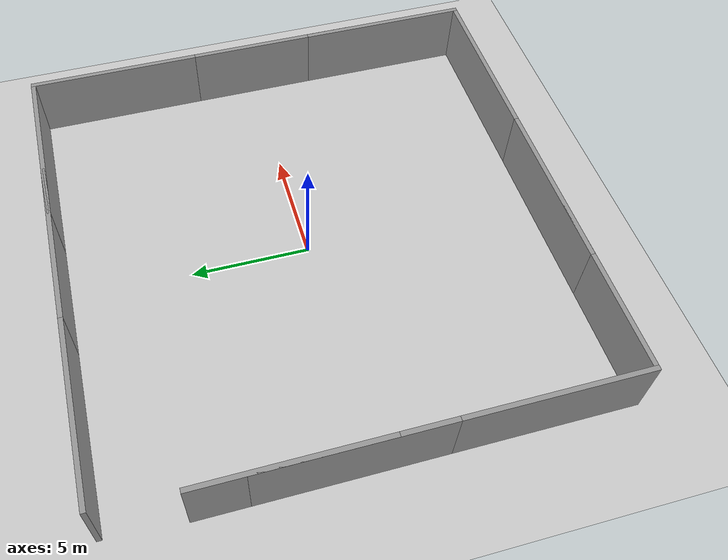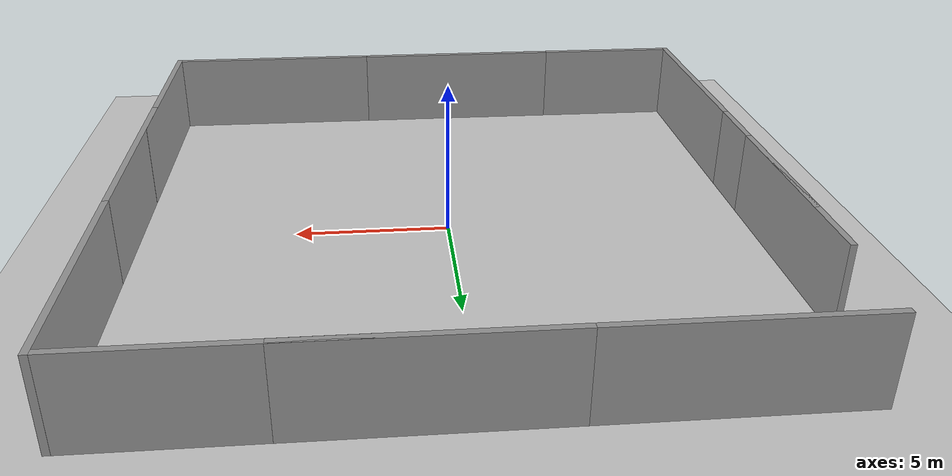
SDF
<sdf version="1.7">
 <world name="default">
  <light name="sun" type="directional">
   <pose>0 0 10 0 -0 0</pose>
   <diffuse>0.8 0.8 0.8 1</diffuse>
   <specular>0.2 0.2 0.2 1</specular>
   <attenuation>
    <range>1000</range>
    <constant>0.9</constant>
    <linear>0.01</linear>
    <quadratic>0.001</quadratic>
   </attenuation>
   <direction>-0.5 0.1 -0.9</direction>
   <spot><inner_angle>0</inner_angle><outer_angle>0</outer_angle><falloff>0</falloff></spot>
  </light>
  <model name="ground_plane">
   <static>1</static>
   <link name="link">
    <collision name="collision">
     <geometry><plane><normal>0 0 1</normal><size>100 100</size></plane></geometry>
     <surface>
      <contact><collide_bitmask>65535</collide_bitmask></contact>
      <friction><ode><mu>100</mu><mu2>50</mu2></ode></friction>
     </surface>
    </collision>
    <visual name="visual">
     <cast_shadows>0</cast_shadows>
     <geometry><plane><normal>0 0 1</normal><size>100 100</size></plane></geometry>
     <material>
      <script><uri>file://media/materials/scripts/gazebo.material</uri><name>Gazebo/Grey</name></script>
     </material>
    </visual>
   </link>
  </model>
  <gravity>0 0 -9.8</gravity>
  <magnetic_field>6e-06 2.3e-05 -4.2e-05</magnetic_field>
  <atmosphere type="adiabatic"/>
  <physics type="ode">
   <max_step_size>0.001</max_step_size>
   <real_time_factor>1</real_time_factor>
   <real_time_update_rate>1000</real_time_update_rate>
  </physics>
  <scene><ambient>0.4 0.4 0.4 1</ambient><background>0.7 0.7 0.7 1</background><shadows>1</shadows></scene>
  <spherical_coordinates>
   <surface_model>EARTH_WGS84</surface_model>
   <latitude_deg>0</latitude_deg>
   <longitude_deg>0</longitude_deg>
   <elevation>0</elevation>
   <heading_deg>0</heading_deg>
  </spherical_coordinates>
  <model name="grey_wall">
   <static>1</static>
   <link name="link">
    <pose>0 0 1.4 0 -0 0</pose>
    <collision name="collision"><geometry><box><size>7.5 0.2 2.8</size></box></geometry></collision>
    <visual name="visual">
     <cast_shadows>0</cast_shadows>
     <geometry><box><size>7.5 0.2 2.8</size></box></geometry>
     <material>
      <script>
       <uri>model://grey_wall/materials/scripts</uri>
       <uri>model://grey_wall/materials/textures</uri>
       <name>vrc/grey_wall</name>
      </script>
     </material>
    </visual>
   </link>
   <pose>-6.25717 10.1157 0 0 -0 0</pose>
  </model>
  <model name="grey_wall_0">
   <static>1</static>
   <link name="link">
    <pose>0 0 1.4 0 -0 0</pose>
    <collision name="collision"><geometry><box><size>7.5 0.2 2.8</size></box></geometry></collision>
    <visual name="visual">
     <cast_shadows>0</cast_shadows>
     <geometry><box><size>7.5 0.2 2.8</size></box></geometry>
     <material>
      <script>
       <uri>model://grey_wall/materials/scripts</uri>
       <uri>model://grey_wall/materials/textures</uri>
       <name>vrc/grey_wall</name>
      </script>
     </material>
    </visual>
   </link>
   <pose>1.20815 10.115 0 0 -0 0</pose>
  </model>
  <model name="grey_wall_1">
   <static>1</static>
   <link name="link">
    <pose>0 0 1.4 0 -0 0</pose>
    <collision name="collision"><geometry><box><size>7.5 0.2 2.8</size></box></geometry></collision>
    <visual name="visual">
     <cast_shadows>0</cast_shadows>
     <geometry><box><size>7.5 0.2 2.8</size></box></geometry>
     <material>
      <script>
       <uri>model://grey_wall/materials/scripts</uri>
       <uri>model://grey_wall/materials/textures</uri>
       <name>vrc/grey_wall</name>
      </script>
     </material>
    </visual>
   </link>
   <pose>6.25235 10.1127 0 0 -0 0</pose>
  </model>
  <model name="grey_wall_2">
   <static>1</static>
   <link name="link">
    <pose>0 0 1.4 0 -0 0</pose>
    <collision name="collision"><geometry><box><size>7.5 0.2 2.8</size></box></geometry></collision>
    <visual name="visual">
     <cast_shadows>0</cast_shadows>
     <geometry><box><size>7.5 0.2 2.8</size></box></geometry>
     <material>
      <script>
       <uri>model://grey_wall/materials/scripts</uri>
       <uri>model://grey_wall/materials/textures</uri>
       <name>vrc/grey_wall</name>
      </script>
     </material>
    </visual>
   </link>
   <pose>6.25185 -10.1052 0 0 -0 0</pose>
  </model>
  <model name="grey_wall_3">
   <static>1</static>
   <link name="link">
    <pose>0 0 1.4 0 -0 0</pose>
    <collision name="collision"><geometry><box><size>7.5 0.2 2.8</size></box></geometry></collision>
    <visual name="visual">
     <cast_shadows>0</cast_shadows>
     <geometry><box><size>7.5 0.2 2.8</size></box></geometry>
     <material>
      <script>
       <uri>model://grey_wall/materials/scripts</uri>
       <uri>model://grey_wall/materials/textures</uri>
       <name>vrc/grey_wall</name>
      </script>
     </material>
    </visual>
   </link>
   <pose>-1.24041 -10.1037 0 0 -0 0</pose>
  </model>
  <model name="grey_wall_4">
   <static>1</static>
   <link name="link">
    <pose>0 0 1.4 0 -0 0</pose>
    <collision name="collision"><geometry><box><size>7.5 0.2 2.8</size></box></geometry></collision>
    <visual name="visual">
     <cast_shadows>0</cast_shadows>
     <geometry><box><size>7.5 0.2 2.8</size></box></geometry>
     <material>
      <script>
       <uri>model://grey_wall/materials/scripts</uri>
       <uri>model://grey_wall/materials/textures</uri>
       <name>vrc/grey_wall</name>
      </script>
     </material>
    </visual>
   </link>
   <pose>-6.24004 -10.105 0 0 -0 0</pose>
  </model>
  <model name="grey_wall_5">
   <static>1</static>
   <link name="link">
    <pose>0 0 1.4 0 -0 0</pose>
    <collision name="collision"><geometry><box><size>7.5 0.2 2.8</size></box></geometry></collision>
    <visual name="visual">
     <cast_shadows>0</cast_shadows>
     <geometry><box><size>7.5 0.2 2.8</size></box></geometry>
     <material>
      <script>
       <uri>model://grey_wall/materials/scripts</uri>
       <uri>model://grey_wall/materials/textures</uri>
       <name>vrc/grey_wall</name>
      </script>
     </material>
    </visual>
   </link>
   <pose>10.1005 6.46351 0 0 -0 1.5708</pose>
  </model>
  <model name="grey_wall_6">
   <static>1</static>
   <link name="link">
    <pose>0 0 1.4 0 -0 0</pose>
    <collision name="collision"><geometry><box><size>7.5 0.2 2.8</size></box></geometry></collision>
    <visual name="visual">
     <cast_shadows>0</cast_shadows>
     <geometry><box><size>7.5 0.2 2.8</size></box></geometry>
     <material>
      <script>
       <uri>model://grey_wall/materials/scripts</uri>
       <uri>model://grey_wall/materials/textures</uri>
       <name>vrc/grey_wall</name>
      </script>
     </material>
    </visual>
   </link>
   <pose>10.1002 -1.03223 0 0 -0 1.5708</pose>
  </model>
  <model name="grey_wall_7">
   <static>1</static>
   <link name="link">
    <pose>0 0 1.4 0 -0 0</pose>
    <collision name="collision"><geometry><box><size>7.5 0.2 2.8</size></box></geometry></collision>
    <visual name="visual">
     <cast_shadows>0</cast_shadows>
     <geometry><box><size>7.5 0.2 2.8</size></box></geometry>
     <material>
      <script>
       <uri>model://grey_wall/materials/scripts</uri>
       <uri>model://grey_wall/materials/textures</uri>
       <name>vrc/grey_wall</name>
      </script>
     </material>
    </visual>
   </link>
   <pose>10.0974 -6.45406 0 0 -0 1.5708</pose>
  </model>
  <model name="grey_wall_8">
   <static>1</static>
   <link name="link">
    <pose>0 0 1.4 0 -0 0</pose>
    <collision name="collision"><geometry><box><size>7.5 0.2 2.8</size></box></geometry></collision>
    <visual name="visual">
     <cast_shadows>0</cast_shadows>
     <geometry><box><size>7.5 0.2 2.8</size></box></geometry>
     <material>
      <script>
       <uri>model://grey_wall/materials/scripts</uri>
       <uri>model://grey_wall/materials/textures</uri>
       <name>vrc/grey_wall</name>
      </script>
     </material>
    </visual>
   </link>
   <pose>-10.0899 -6.45478 0 0 -0 1.5708</pose>
  </model>
  <model name="grey_wall_9">
   <static>1</static>
   <link name="link">
    <pose>0 0 1.4 0 -0 0</pose>
    <collision name="collision"><geometry><box><size>7.5 0.2 2.8</size></box></geometry></collision>
    <visual name="visual">
     <cast_shadows>0</cast_shadows>
     <geometry><box><size>7.5 0.2 2.8</size></box></geometry>
     <material>
      <script>
       <uri>model://grey_wall/materials/scripts</uri>
       <uri>model://grey_wall/materials/textures</uri>
       <name>vrc/grey_wall</name>
      </script>
     </material>
    </visual>
   </link>
   <pose>-10.0899 1.04252 0 0 -0 1.5708</pose>
  </model>
  <model name="grey_wall_10">
   <static>1</static>
   <link name="link">
    <pose>0 0 1.4 0 -0 0</pose>
    <collision name="collision"><geometry><box><size>7.5 0.2 2.8</size></box></geometry></collision>
    <visual name="visual">
     <cast_shadows>0</cast_shadows>
     <geometry><box><size>7.5 0.2 2.8</size></box></geometry>
     <material>
      <script>
       <uri>model://grey_wall/materials/scripts</uri>
       <uri>model://grey_wall/materials/textures</uri>
       <name>vrc/grey_wall</name>
      </script>
     </material>
    </visual>
   </link>
   <pose>-10.0892 3.24362 0 0 -0 1.5708</pose>
  </model>
  <plugin filename="libcollision_map_creator.so" name="collision_map_creator"/>
 </world>
</sdf>
